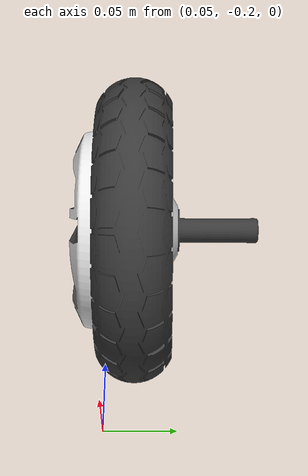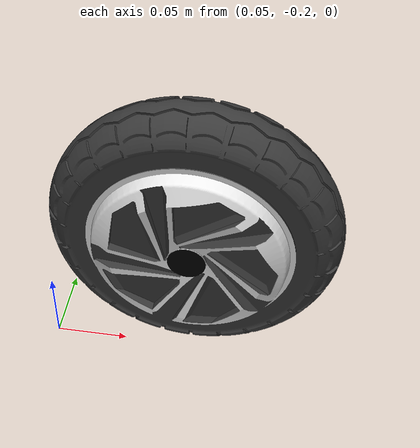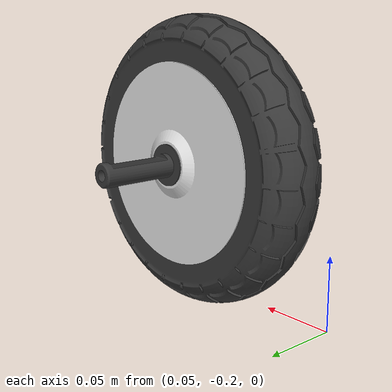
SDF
<?xml version="1.0" ?>
<sdf version="1.6">
  <model name="hoverboard_wheel">
    <pose>0 0 0.15 0 0 0</pose>
    <link name="link">
      <inertial>
        <mass>2</mass>
        <inertia>
          <ixx>0.041666667</ixx>
          <ixy>0</ixy>
          <ixz>0</ixz>
          <iyy>0.056666667</iyy>
          <iyz>0</iyz>
          <izz>0.068333333</izz>
        </inertia>
      </inertial>
      <collision name="collision">
        <geometry>
          <mesh>
            <uri>model://hoverboard_wheel/meshes/hoverboard_wheel.dae</uri>
            <scale>0.001 0.001 0.001</scale>
          </mesh>
        </geometry>
        <surface>
          <friction>
            <ode>
              <mu>1.0</mu>
              <mu2>1.0</mu2>
            </ode>
          </friction>
          <contact>
            <ode>
              <kp>10000000.0</kp>
              <kd>1.0</kd>
              <min_depth>0.001</min_depth>
              <max_vel>0.1</max_vel>
            </ode>
          </contact>
        </surface>
      </collision>
      <visual name="visual">
        <pose>0 0 -0.15 0 0 0</pose>
        <geometry>
          <mesh>
            <uri>model://hoverboard_wheel/meshes/hoverboard_wheel.dae</uri>
            <scale>0.001 0.001 0.001</scale>
          </mesh>
        </geometry>
      </visual>
    </link>
  </model>
</sdf>
